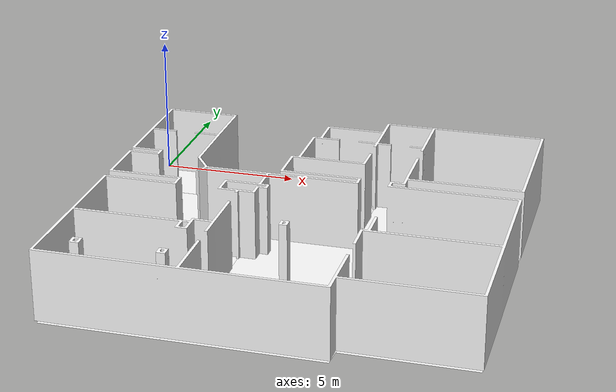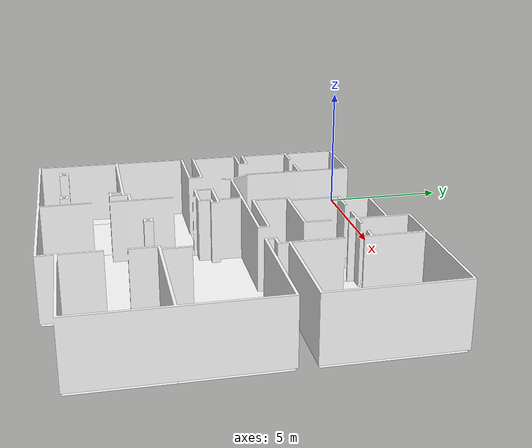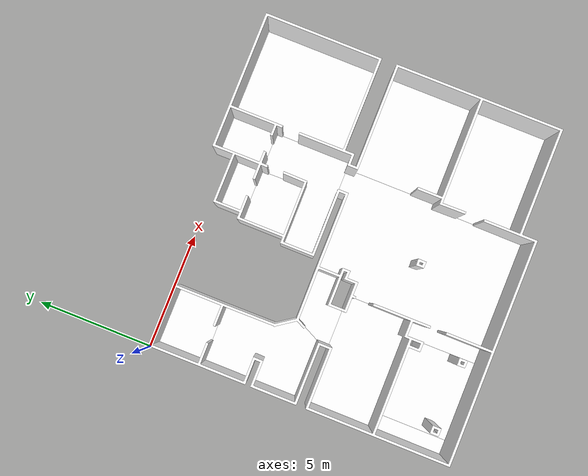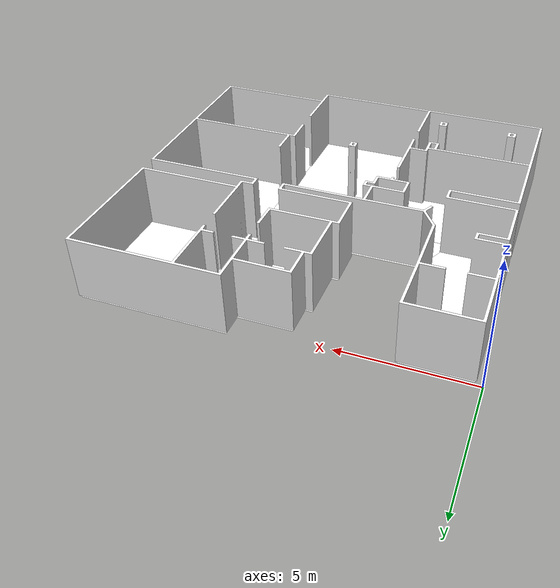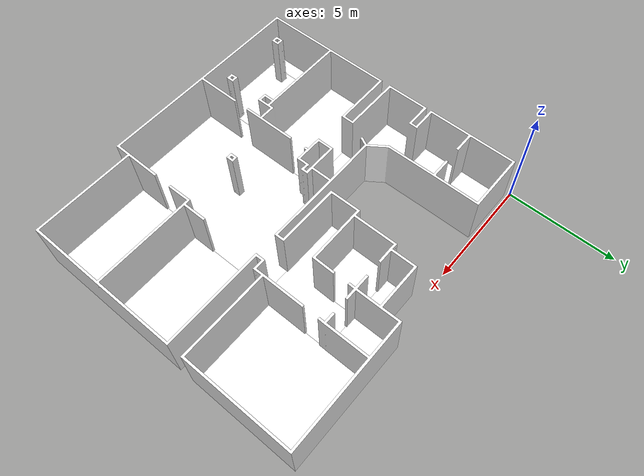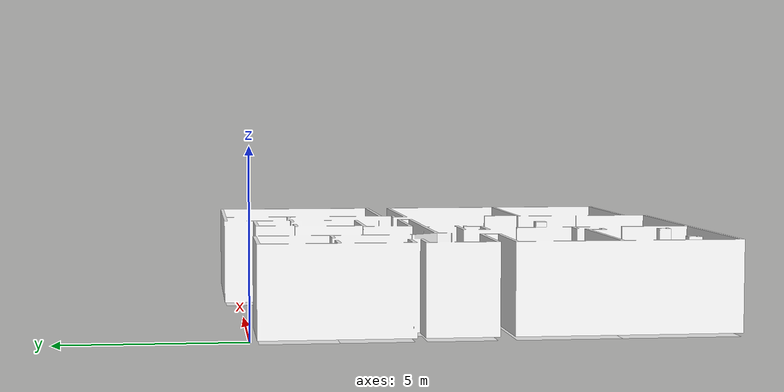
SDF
<?xml version='1.0' encoding='utf-8'?>
<sdf version="1.7">
  <model name="Surfaces">
    <static>true</static>
    <link name="floor_1">
      <visual name="visual">
        <geometry>
          <mesh>
            <uri>model://Surfaces/meshes/floor_1.obj</uri>
          </mesh>
        </geometry>
        <material>
          <diffuse>1.0 1.0 1.0</diffuse>
          <specular>0.1 0.1 0.1</specular>
          <pbr>
            <metal>
              <metalness>0.0</metalness>
              <albedo_map>model://Surfaces/meshes/wood1.png</albedo_map>
            </metal>
          </pbr>
          <script>
            <uri>model://Surfaces/meshes/</uri>
            <name>floor_1_Diffuse</name>
          </script>
        </material>
      </visual>
      <collision name="collision">
        <geometry>
          <mesh>
            <uri>model://Surfaces/meshes/floor_1.obj</uri>
          </mesh>
        </geometry>
        <surface>
          <contact>
            <collide_bitmask>0x01</collide_bitmask>
          </contact>
        </surface>
      </collision>
    </link>
    <link name="floor_2">
      <visual name="visual">
        <geometry>
          <mesh>
            <uri>model://Surfaces/meshes/floor_2.obj</uri>
          </mesh>
        </geometry>
        <material>
          <diffuse>1.0 1.0 1.0</diffuse>
          <specular>0.1 0.1 0.1</specular>
          <pbr>
            <metal>
              <metalness>0.0</metalness>
              <albedo_map>model://Surfaces/meshes/white_carpet.png</albedo_map>
            </metal>
          </pbr>
          <script>
            <uri>model://Surfaces/meshes/</uri>
            <name>floor_2_Diffuse</name>
          </script>
        </material>
      </visual>
      <collision name="collision">
        <geometry>
          <mesh>
            <uri>model://Surfaces/meshes/floor_2.obj</uri>
          </mesh>
        </geometry>
        <surface>
          <contact>
            <collide_bitmask>0x01</collide_bitmask>
          </contact>
        </surface>
      </collision>
    </link>
    <link name="floor_3">
      <visual name="visual">
        <geometry>
          <mesh>
            <uri>model://Surfaces/meshes/floor_3.obj</uri>
          </mesh>
        </geometry>
        <material>
          <diffuse>1.0 1.0 1.0</diffuse>
          <specular>0.1 0.1 0.1</specular>
          <pbr>
            <metal>
              <metalness>0.0</metalness>
              <albedo_map>model://Surfaces/meshes/white_carpet.png</albedo_map>
            </metal>
          </pbr>
          <script>
            <uri>model://Surfaces/meshes/</uri>
            <name>floor_3_Diffuse</name>
          </script>
        </material>
      </visual>
      <collision name="collision">
        <geometry>
          <mesh>
            <uri>model://Surfaces/meshes/floor_3.obj</uri>
          </mesh>
        </geometry>
        <surface>
          <contact>
            <collide_bitmask>0x01</collide_bitmask>
          </contact>
        </surface>
      </collision>
    </link>
    <link name="floor_4">
      <visual name="visual">
        <geometry>
          <mesh>
            <uri>model://Surfaces/meshes/floor_4.obj</uri>
          </mesh>
        </geometry>
        <material>
          <diffuse>1.0 1.0 1.0</diffuse>
          <specular>0.1 0.1 0.1</specular>
          <pbr>
            <metal>
              <metalness>0.0</metalness>
              <albedo_map>model://Surfaces/meshes/black_concrete.png</albedo_map>
            </metal>
          </pbr>
          <script>
            <uri>model://Surfaces/meshes/</uri>
            <name>floor_4_Diffuse</name>
          </script>
        </material>
      </visual>
      <collision name="collision">
        <geometry>
          <mesh>
            <uri>model://Surfaces/meshes/floor_4.obj</uri>
          </mesh>
        </geometry>
        <surface>
          <contact>
            <collide_bitmask>0x01</collide_bitmask>
          </contact>
        </surface>
      </collision>
    </link>
    <link name="floor_5">
      <visual name="visual">
        <geometry>
          <mesh>
            <uri>model://Surfaces/meshes/floor_5.obj</uri>
          </mesh>
        </geometry>
        <material>
          <diffuse>1.0 1.0 1.0</diffuse>
          <specular>0.1 0.1 0.1</specular>
          <pbr>
            <metal>
              <metalness>0.0</metalness>
              <albedo_map>model://Surfaces/meshes/white_tiles.png</albedo_map>
            </metal>
          </pbr>
          <script>
            <uri>model://Surfaces/meshes/</uri>
            <name>floor_5_Diffuse</name>
          </script>
        </material>
      </visual>
      <collision name="collision">
        <geometry>
          <mesh>
            <uri>model://Surfaces/meshes/floor_5.obj</uri>
          </mesh>
        </geometry>
        <surface>
          <contact>
            <collide_bitmask>0x01</collide_bitmask>
          </contact>
        </surface>
      </collision>
    </link>
    <link name="floor_6">
      <visual name="visual">
        <geometry>
          <mesh>
            <uri>model://Surfaces/meshes/floor_6.obj</uri>
          </mesh>
        </geometry>
        <material>
          <diffuse>1.0 1.0 1.0</diffuse>
          <specular>0.1 0.1 0.1</specular>
          <pbr>
            <metal>
              <metalness>0.0</metalness>
              <albedo_map>model://Surfaces/meshes/white_tiles.png</albedo_map>
            </metal>
          </pbr>
          <script>
            <uri>model://Surfaces/meshes/</uri>
            <name>floor_6_Diffuse</name>
          </script>
        </material>
      </visual>
      <collision name="collision">
        <geometry>
          <mesh>
            <uri>model://Surfaces/meshes/floor_6.obj</uri>
          </mesh>
        </geometry>
        <surface>
          <contact>
            <collide_bitmask>0x01</collide_bitmask>
          </contact>
        </surface>
      </collision>
    </link>
    <link name="floor_7">
      <visual name="visual">
        <geometry>
          <mesh>
            <uri>model://Surfaces/meshes/floor_7.obj</uri>
          </mesh>
        </geometry>
        <material>
          <diffuse>1.0 1.0 1.0</diffuse>
          <specular>0.1 0.1 0.1</specular>
          <pbr>
            <metal>
              <metalness>0.0</metalness>
              <albedo_map>model://Surfaces/meshes/white_tiles.png</albedo_map>
            </metal>
          </pbr>
          <script>
            <uri>model://Surfaces/meshes/</uri>
            <name>floor_7_Diffuse</name>
          </script>
        </material>
      </visual>
      <collision name="collision">
        <geometry>
          <mesh>
            <uri>model://Surfaces/meshes/floor_7.obj</uri>
          </mesh>
        </geometry>
        <surface>
          <contact>
            <collide_bitmask>0x01</collide_bitmask>
          </contact>
        </surface>
      </collision>
    </link>
    <link name="floor_8">
      <visual name="visual">
        <geometry>
          <mesh>
            <uri>model://Surfaces/meshes/floor_8.obj</uri>
          </mesh>
        </geometry>
        <material>
          <diffuse>1.0 1.0 1.0</diffuse>
          <specular>0.1 0.1 0.1</specular>
          <pbr>
            <metal>
              <metalness>0.0</metalness>
              <albedo_map>model://Surfaces/meshes/white_carpet.png</albedo_map>
            </metal>
          </pbr>
          <script>
            <uri>model://Surfaces/meshes/</uri>
            <name>floor_8_Diffuse</name>
          </script>
        </material>
      </visual>
      <collision name="collision">
        <geometry>
          <mesh>
            <uri>model://Surfaces/meshes/floor_8.obj</uri>
          </mesh>
        </geometry>
        <surface>
          <contact>
            <collide_bitmask>0x01</collide_bitmask>
          </contact>
        </surface>
      </collision>
    </link>
    <link name="floor_9">
      <visual name="visual">
        <geometry>
          <mesh>
            <uri>model://Surfaces/meshes/floor_9.obj</uri>
          </mesh>
        </geometry>
        <material>
          <diffuse>1.0 1.0 1.0</diffuse>
          <specular>0.1 0.1 0.1</specular>
          <pbr>
            <metal>
              <metalness>0.0</metalness>
              <albedo_map>model://Surfaces/meshes/wood1.png</albedo_map>
            </metal>
          </pbr>
          <script>
            <uri>model://Surfaces/meshes/</uri>
            <name>floor_9_Diffuse</name>
          </script>
        </material>
      </visual>
      <collision name="collision">
        <geometry>
          <mesh>
            <uri>model://Surfaces/meshes/floor_9.obj</uri>
          </mesh>
        </geometry>
        <surface>
          <contact>
            <collide_bitmask>0x01</collide_bitmask>
          </contact>
        </surface>
      </collision>
    </link>
    <link name="floor_10">
      <visual name="visual">
        <geometry>
          <mesh>
            <uri>model://Surfaces/meshes/floor_10.obj</uri>
          </mesh>
        </geometry>
        <material>
          <diffuse>1.0 1.0 1.0</diffuse>
          <specular>0.1 0.1 0.1</specular>
          <pbr>
            <metal>
              <metalness>0.0</metalness>
              <albedo_map>model://Surfaces/meshes/white_carpet.png</albedo_map>
            </metal>
          </pbr>
          <script>
            <uri>model://Surfaces/meshes/</uri>
            <name>floor_10_Diffuse</name>
          </script>
        </material>
      </visual>
      <collision name="collision">
        <geometry>
          <mesh>
            <uri>model://Surfaces/meshes/floor_10.obj</uri>
          </mesh>
        </geometry>
        <surface>
          <contact>
            <collide_bitmask>0x01</collide_bitmask>
          </contact>
        </surface>
      </collision>
    </link>
    <link name="floor_11">
      <visual name="visual">
        <geometry>
          <mesh>
            <uri>model://Surfaces/meshes/floor_11.obj</uri>
          </mesh>
        </geometry>
        <material>
          <diffuse>1.0 1.0 1.0</diffuse>
          <specular>0.1 0.1 0.1</specular>
          <pbr>
            <metal>
              <metalness>0.0</metalness>
              <albedo_map>model://Surfaces/meshes/wood1.png</albedo_map>
            </metal>
          </pbr>
          <script>
            <uri>model://Surfaces/meshes/</uri>
            <name>floor_11_Diffuse</name>
          </script>
        </material>
      </visual>
      <collision name="collision">
        <geometry>
          <mesh>
            <uri>model://Surfaces/meshes/floor_11.obj</uri>
          </mesh>
        </geometry>
        <surface>
          <contact>
            <collide_bitmask>0x01</collide_bitmask>
          </contact>
        </surface>
      </collision>
    </link>
    <link name="floor_12">
      <visual name="visual">
        <geometry>
          <mesh>
            <uri>model://Surfaces/meshes/floor_12.obj</uri>
          </mesh>
        </geometry>
        <material>
          <diffuse>1.0 1.0 1.0</diffuse>
          <specular>0.1 0.1 0.1</specular>
          <pbr>
            <metal>
              <metalness>0.0</metalness>
              <albedo_map>model://Surfaces/meshes/white_carpet.png</albedo_map>
            </metal>
          </pbr>
          <script>
            <uri>model://Surfaces/meshes/</uri>
            <name>floor_12_Diffuse</name>
          </script>
        </material>
      </visual>
      <collision name="collision">
        <geometry>
          <mesh>
            <uri>model://Surfaces/meshes/floor_12.obj</uri>
          </mesh>
        </geometry>
        <surface>
          <contact>
            <collide_bitmask>0x01</collide_bitmask>
          </contact>
        </surface>
      </collision>
    </link>
    <link name="floor_13">
      <visual name="visual">
        <geometry>
          <mesh>
            <uri>model://Surfaces/meshes/floor_13.obj</uri>
          </mesh>
        </geometry>
        <material>
          <diffuse>1.0 1.0 1.0</diffuse>
          <specular>0.1 0.1 0.1</specular>
          <pbr>
            <metal>
              <metalness>0.0</metalness>
              <albedo_map>model://Surfaces/meshes/white_tiles.png</albedo_map>
            </metal>
          </pbr>
          <script>
            <uri>model://Surfaces/meshes/</uri>
            <name>floor_13_Diffuse</name>
          </script>
        </material>
      </visual>
      <collision name="collision">
        <geometry>
          <mesh>
            <uri>model://Surfaces/meshes/floor_13.obj</uri>
          </mesh>
        </geometry>
        <surface>
          <contact>
            <collide_bitmask>0x01</collide_bitmask>
          </contact>
        </surface>
      </collision>
    </link>
    <link name="floor_14">
      <visual name="visual">
        <geometry>
          <mesh>
            <uri>model://Surfaces/meshes/floor_14.obj</uri>
          </mesh>
        </geometry>
        <material>
          <diffuse>1.0 1.0 1.0</diffuse>
          <specular>0.1 0.1 0.1</specular>
          <pbr>
            <metal>
              <metalness>0.0</metalness>
              <albedo_map>model://Surfaces/meshes/black_concrete.png</albedo_map>
            </metal>
          </pbr>
          <script>
            <uri>model://Surfaces/meshes/</uri>
            <name>floor_14_Diffuse</name>
          </script>
        </material>
      </visual>
      <collision name="collision">
        <geometry>
          <mesh>
            <uri>model://Surfaces/meshes/floor_14.obj</uri>
          </mesh>
        </geometry>
        <surface>
          <contact>
            <collide_bitmask>0x01</collide_bitmask>
          </contact>
        </surface>
      </collision>
    </link>
    <link name="wall_1">
      <visual name="wall_1">
        <geometry>
          <mesh>
            <uri>model://Surfaces/meshes/wall_1.obj</uri>
          </mesh>
        </geometry>
        <transparency>0.0</transparency>
        <material>
          <diffuse>1.0 1.0 1.0</diffuse>
          <specular>0.1 0.1 0.1</specular>
          <pbr>
            <metal>
              <metalness>0.0</metalness>
              <albedo_map>model://Surfaces/meshes/white_wall.png</albedo_map>
            </metal>
          </pbr>
          <script>
            <uri>model://Surfaces/meshes/</uri>
            <name>wall_1_Diffuse</name>
          </script>
        </material>
      </visual>
      <collision name="collision">
        <geometry>
          <mesh>
            <uri>model://Surfaces/meshes/wall_1.obj</uri>
          </mesh>
        </geometry>
        <surface>
          <contact>
            <collide_bitmask>0x01</collide_bitmask>
          </contact>
        </surface>
      </collision>
      <pose>0.21943209449273376 -13.114369539655925 0 0 0 0</pose>
    </link>
    <link name="wall_2">
      <visual name="wall_2">
        <geometry>
          <mesh>
            <uri>model://Surfaces/meshes/wall_2.obj</uri>
          </mesh>
        </geometry>
        <transparency>0.0</transparency>
        <material>
          <diffuse>1.0 1.0 1.0</diffuse>
          <specular>0.1 0.1 0.1</specular>
          <pbr>
            <metal>
              <metalness>0.0</metalness>
              <albedo_map>model://Surfaces/meshes/wood2.png</albedo_map>
            </metal>
          </pbr>
          <script>
            <uri>model://Surfaces/meshes/</uri>
            <name>wall_2_Diffuse</name>
          </script>
        </material>
      </visual>
      <collision name="collision">
        <geometry>
          <mesh>
            <uri>model://Surfaces/meshes/wall_2.obj</uri>
          </mesh>
        </geometry>
        <surface>
          <contact>
            <collide_bitmask>0x01</collide_bitmask>
          </contact>
        </surface>
      </collision>
      <pose>1.1722515279844483 -12.247741581368196 0 0 0 0</pose>
    </link>
  </model>
</sdf>
